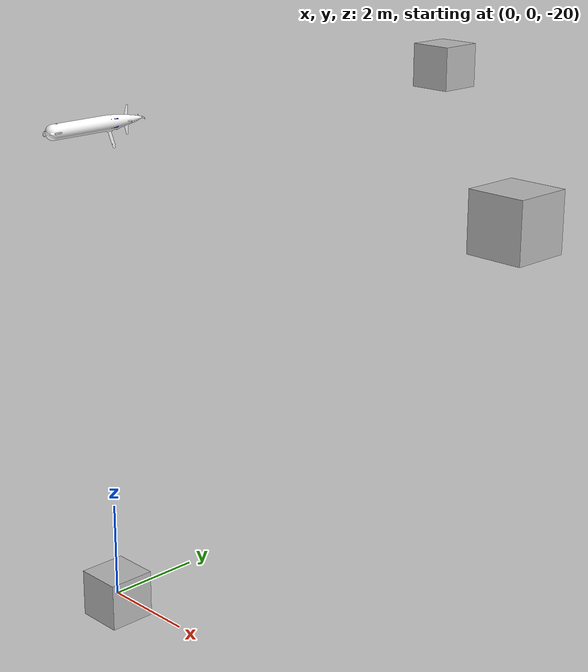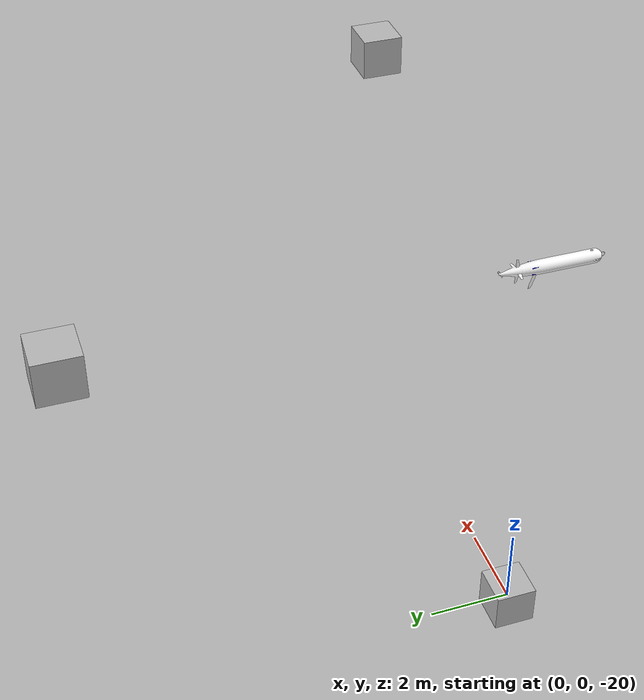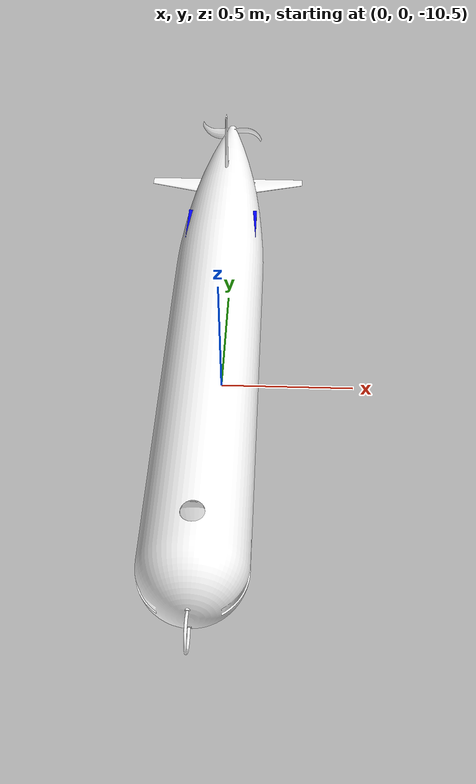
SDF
<?xml version="1.0" ?>
<!--
  Development of this module has been funded by the Monterey Bay Aquarium
  Research Institute (MBARI) and the David and Lucile Packard Foundation
-->

<!--
  This file is essentially identical to buoyant_tethys, except the vehicle
  starts at a depth of -10m instead of 0m. This is for tests that require the
  vehicle to be fully submerged.
-->
<sdf version="1.6">
  <world name="buoyant_tethys">
    <scene>
      <!-- For turquoise ambient to match particle effect -->
      <ambient>0.0 1.0 1.0</ambient>
      <!-- For default gray ambient -->
      <background>0.0 0.7 0.8</background>

      <grid>false</grid>
    </scene>

    <physics name="1ms" type="dart">
      <max_step_size>0.02</max_step_size>
      <real_time_factor>0</real_time_factor>
    </physics>
    <plugin
      filename="ignition-gazebo-physics-system"
      name="ignition::gazebo::systems::Physics">
    </plugin>
    <plugin
      filename="ignition-gazebo-user-commands-system"
      name="ignition::gazebo::systems::UserCommands">
    </plugin>
    <plugin
      filename="ignition-gazebo-scene-broadcaster-system"
      name="ignition::gazebo::systems::SceneBroadcaster">
    </plugin>

    <plugin
      filename="ignition-gazebo-buoyancy-system"
      name="ignition::gazebo::systems::Buoyancy">
      <!-- TODO: fix behaviour near surface, see https://github.com/osrf/lrauv/issues/102-->
        <graded_buoyancy>
        <default_density>1025</default_density>
        <density_change>
          <above_depth>0.5</above_depth>
          <density>1.125</density>
        </density_change>
      </graded_buoyancy>
    </plugin>

    <!-- Requires ParticleEmitter2 in ign-gazebo 4.8.0, which will be copied
      to ParticleEmitter in Ignition G.
      See https://github.com/ignitionrobotics/ign-gazebo/pull/730 -->

    <!-- Uncomment for time analysis -->

    <!-- Spawn by default in a location with science data in csv -->
    <spherical_coordinates>
      <surface_model>EARTH_WGS84</surface_model>
      <world_frame_orientation>ENU</world_frame_orientation>

      <!-- For 2003080103_mb_l3_las.csv -->
      <latitude_deg>35.5999984741211</latitude_deg>
      <longitude_deg>-121.779998779297</longitude_deg>

      <!-- For 2003080103_mb_l3_las_1x1km.csv -->

      <!-- For simple_test.csv -->

      <elevation>0</elevation>
      <heading_deg>0</heading_deg>
    </spherical_coordinates>
    <plugin
      filename="ScienceSensorsSystem"
      name="tethys::ScienceSensorsSystem">
      <data_path>2003080103_mb_l3_las.csv</data_path>
    </plugin>

    <gui fullscreen="0">

      <!-- 3D scene -->
      <plugin filename="MinimalScene" name="3D View">
        <ignition-gui>
          <title>3D View</title>
          <property type="bool" key="showTitleBar">false</property>
          <property type="string" key="state">docked</property>
        </ignition-gui>

        <engine>ogre2</engine>
        <scene>scene</scene>
        <ambient_light>0.4 0.4 0.4</ambient_light>
        <background_color>0.8 0.8 0.8</background_color>
        <!-- looking at robot -->
        <camera_pose>4.5 0 4  0 0.45 3.14</camera_pose>
        <!-- looking at all science data for 2003080103_mb_l3_las.csv -->
        <camera_clip>
          <!-- ortho view needs low near clip -->
          <!-- but a very low near clip messes orbit's far clip ?! -->
          <near>0.1</near>
          <!-- See 3000 km away -->
          <far>3000000</far>
        </camera_clip>
      </plugin>

      <!-- Plugins that add functionality to the scene -->
      <plugin filename="EntityContextMenuPlugin" name="Entity context menu">
        <ignition-gui>
          <property key="state" type="string">floating</property>
          <property key="width" type="double">5</property>
          <property key="height" type="double">5</property>
          <property key="showTitleBar" type="bool">false</property>
        </ignition-gui>
      </plugin>
      <plugin filename="GzSceneManager" name="Scene Manager">
        <ignition-gui>
          <anchors target="3D View">
            <line own="right" target="right"/>
            <line own="top" target="top"/>
          </anchors>
          <property key="resizable" type="bool">false</property>
          <property key="width" type="double">5</property>
          <property key="height" type="double">5</property>
          <property key="state" type="string">floating</property>
          <property key="showTitleBar" type="bool">false</property>
        </ignition-gui>
      </plugin>
      <plugin filename="InteractiveViewControl" name="Interactive view control">
        <ignition-gui>
          <anchors target="3D View">
            <line own="right" target="right"/>
            <line own="top" target="top"/>
          </anchors>
          <property key="resizable" type="bool">false</property>
          <property key="width" type="double">5</property>
          <property key="height" type="double">5</property>
          <property key="state" type="string">floating</property>
          <property key="showTitleBar" type="bool">false</property>
        </ignition-gui>
      </plugin>
      <plugin filename="CameraTracking" name="Camera Tracking">
        <ignition-gui>
          <anchors target="3D View">
            <line own="right" target="right"/>
            <line own="top" target="top"/>
          </anchors>
          <property key="resizable" type="bool">false</property>
          <property key="width" type="double">5</property>
          <property key="height" type="double">5</property>
          <property key="state" type="string">floating</property>
          <property key="showTitleBar" type="bool">false</property>
        </ignition-gui>
      </plugin>
      <plugin filename="MarkerManager" name="Marker manager">
        <ignition-gui>
          <anchors target="3D View">
            <line own="right" target="right"/>
            <line own="top" target="top"/>
          </anchors>
          <property key="resizable" type="bool">false</property>
          <property key="width" type="double">5</property>
          <property key="height" type="double">5</property>
          <property key="state" type="string">floating</property>
          <property key="showTitleBar" type="bool">false</property>
        </ignition-gui>
        <warn_on_action_failure>false</warn_on_action_failure>
      </plugin>
      <plugin filename="SelectEntities" name="Select Entities">
        <ignition-gui>
          <anchors target="Select entities">
            <line own="right" target="right"/>
            <line own="top" target="top"/>
          </anchors>
          <property key="resizable" type="bool">false</property>
          <property key="width" type="double">5</property>
          <property key="height" type="double">5</property>
          <property key="state" type="string">floating</property>
          <property key="showTitleBar" type="bool">false</property>
        </ignition-gui>
      </plugin>
      <plugin filename="VisualizationCapabilities" name="Visualization Capabilities">
        <ignition-gui>
          <anchors target="Select entities">
            <line own="right" target="right"/>
            <line own="top" target="top"/>
          </anchors>
          <property key="resizable" type="bool">false</property>
          <property key="width" type="double">5</property>
          <property key="height" type="double">5</property>
          <property key="state" type="string">floating</property>
          <property key="showTitleBar" type="bool">false</property>
        </ignition-gui>
      </plugin>

      <!-- World control -->
      <plugin filename="WorldControl" name="World control">
        <ignition-gui>
          <title>World control</title>
          <property type="bool" key="showTitleBar">false</property>
          <property type="bool" key="resizable">false</property>
          <property type="double" key="height">72</property>
          <property type="double" key="width">121</property>
          <property type="double" key="z">1</property>

          <property type="string" key="state">floating</property>
          <anchors target="3D View">
            <line own="left" target="left"/>
            <line own="bottom" target="bottom"/>
          </anchors>
        </ignition-gui>

        <play_pause>true</play_pause>
        <step>true</step>
        <start_paused>true</start_paused>
      </plugin>

      <!-- World statistics -->
      <plugin filename="WorldStats" name="World stats">
        <ignition-gui>
          <title>World stats</title>
          <property type="bool" key="showTitleBar">false</property>
          <property type="bool" key="resizable">false</property>
          <property type="double" key="height">110</property>
          <property type="double" key="width">290</property>
          <property type="double" key="z">1</property>

          <property type="string" key="state">floating</property>
          <anchors target="3D View">
            <line own="right" target="right"/>
            <line own="bottom" target="bottom"/>
          </anchors>
        </ignition-gui>

        <sim_time>true</sim_time>
        <real_time>true</real_time>
        <real_time_factor>true</real_time_factor>
        <iterations>true</iterations>
      </plugin>

      <plugin filename="Plot3D" name="Plot 3D">
        <ignition-gui>
          <title>Plot Tethys 3D path</title>
          <property type="string" key="state">docked_collapsed</property>
        </ignition-gui>
        <entity_name>tethys</entity_name>
        <color>0 0 1</color>
        <maximum_points>10000</maximum_points>
        <minimum_distance>0.5</minimum_distance>
      </plugin>
      <plugin filename="ComponentInspector" name="Component Inspector">
        <ignition-gui>
          <title>Inspector</title>
          <property type="string" key="state">docked_collapsed</property>
        </ignition-gui>
      </plugin>
      <plugin filename="PointCloud" name="Visualize science data">
        <ignition-gui>
          <title>Visualize science data</title>
          <property type="string" key="state">docked_collapsed</property>
        </ignition-gui>
      </plugin>
      <plugin filename="ViewAngle" name="Camera controls">
        <ignition-gui>
          <title>Camera controls</title>
          <property type="string" key="state">docked_collapsed</property>
        </ignition-gui>
      </plugin>
      <plugin filename="GridConfig" name="Grid config">
        <ignition-gui>
          <property type="string" key="state">docked_collapsed</property>
        </ignition-gui>
        <insert>
          <!-- 300 km x 300 km -->
          <cell_count>6</cell_count>
          <vertical_cell_count>0</vertical_cell_count>
          <!-- 50 km -->
          <cell_length>50000</cell_length>
          <pose>0 100000 0  0 0 0.32</pose>
          <color>0 1 0 1</color>
        </insert>
        <insert>
          <!-- 0.1 km x 0.1 km -->
          <cell_count>100</cell_count>
          <vertical_cell_count>0</vertical_cell_count>
          <cell_length>1</cell_length>
          <pose>0 0 0  0 0 0</pose>
          <color>0.5 0.5 0.5 1</color>
        </insert>
      </plugin>
      <plugin filename="ControlPanelPlugin" name="Tethys Controls">
        <ignition-gui>
          <title>Tethys controls</title>
          <property type="string" key="state">docked_collapsed</property>
        </ignition-gui>
      </plugin>
      <plugin filename="ReferenceAxis" name="Reference axis">
        <ignition-gui>
          <title>Reference axis</title>
          <property type="string" key="state">docked_collapsed</property>
        </ignition-gui>
        <fsk>tethys</fsk>
      </plugin>
    </gui>

    <light type="directional" name="sun">
      <cast_shadows>true</cast_shadows>
      <pose>0 0 10 0 0 0</pose>
      <diffuse>1 1 1 1</diffuse>
      <specular>0.5 0.5 0.5 1</specular>
      <attenuation>
        <range>1000</range>
        <constant>0.9</constant>
        <linear>0.01</linear>
        <quadratic>0.001</quadratic>
      </attenuation>
      <direction>-0.5 0.1 -0.9</direction>
    </light>

    <!-- This invisible plane helps with orbiting the camera, especially at large scales -->
    <model name="horizontal_plane">
      <static>true</static>
      <link name="link">
        <visual name="visual">
          <geometry>
            <plane>
              <normal>0 0 1</normal>
              <!-- 300 km x 300 km -->
              <size>300000 300000</size>
            </plane>
          </geometry>
          <transparency>1.0</transparency>
        </visual>
      </link>
    </model>

    <include>
      <pose>0 0 -10 0 0 0</pose>
      <uri>tethys_equipped</uri>
    </include>

    <model name="commsLink1">
      <static>true</static>
      <pose>0 10 -10 0 0 0</pose>
      <link name="base_link">
        <inertial>
          <mass>1000</mass>
          <inertia>
            <ixx>86.289</ixx>
            <iyy>86.289</iyy>
            <izz>86.289</izz>
          </inertia>
        </inertial>
        <visual name="base_link_vis">
          <geometry>
            <box>
              <size>1 1 1</size>
            </box>
          </geometry>
        </visual>
        <collision name="base_link_coll">
          <geometry>
            <box>
              <size>1 1 1</size>
            </box>
          </geometry>
        </collision>
      </link>
      <plugin
        filename="AcousticCommsPlugin"
        name="tethys::AcousticCommsPlugin">
        <address>2</address>
        <model_plugin_file>simpleacousticmodel</model_plugin_file>
        <model_name>tethys::SimpleAcousticModel</model_name>
        <link_name>base_link</link_name>
        <max_range>2500</max_range>
        <speed_of_sound>1500</speed_of_sound>
        <timestep>0.000001</timestep>
      </plugin>
      <plugin
        filename="RangeBearingPlugin"
        name="tethys::RangeBearingPlugin">
        <address>2</address>
        <processing_delay>0.3</processing_delay>
        <speed_of_sound>1500</speed_of_sound>
        <link_name>base_link</link_name>
        <namespace>box1</namespace>
      </plugin>
    </model>

    <model name="commsLink2">
      <static>true</static>
      <pose>10 0 -10 0 0 0</pose>
      <link name="base_link">
        <inertial>
          <mass>1000</mass>
          <inertia>
            <ixx>86.289</ixx>
            <iyy>86.289</iyy>
            <izz>86.289</izz>
          </inertia>
        </inertial>
        <visual name="base_link_vis">
          <geometry>
            <box>
              <size>1 1 1</size>
            </box>
          </geometry>
        </visual>
        <collision name="base_link_coll">
          <geometry>
            <box>
              <size>1 1 1</size>
            </box>
          </geometry>
        </collision>
      </link>
      <plugin
        filename="AcousticCommsPlugin"
        name="tethys::AcousticCommsPlugin">
        <address>3</address>
        <model_plugin_file>simpleacousticmodel</model_plugin_file>
        <model_name>tethys::SimpleAcousticModel</model_name>
        <link_name>base_link</link_name>
        <max_range>2500</max_range>
        <speed_of_sound>1500</speed_of_sound>
        <timestep>0.000001</timestep>
      </plugin>
      <plugin
        filename="RangeBearingPlugin"
        name="tethys::RangeBearingPlugin">
        <address>3</address>
        <processing_delay>0.3</processing_delay>
        <speed_of_sound>1500</speed_of_sound>
        <link_name>base_link</link_name>
        <namespace>box2</namespace>
      </plugin>
    </model>

    <model name="commsLink3">
      <static>true</static>
      <pose>0 0 -20 0 0 0</pose>
      <link name="base_link">
        <inertial>
          <mass>1000</mass>
          <inertia>
            <ixx>86.289</ixx>
            <iyy>86.289</iyy>
            <izz>86.289</izz>
          </inertia>
        </inertial>
        <visual name="base_link_vis">
          <geometry>
            <box>
              <size>1 1 1</size>
            </box>
          </geometry>
        </visual>
        <collision name="base_link_coll">
          <geometry>
            <box>
              <size>1 1 1</size>
            </box>
          </geometry>
        </collision>
      </link>
      <plugin
        filename="AcousticCommsPlugin"
        name="tethys::AcousticCommsPlugin">
        <address>4</address>
        <model_plugin_file>simpleacousticmodel</model_plugin_file>
        <model_name>tethys::SimpleAcousticModel</model_name>
        <link_name>base_link</link_name>
        <max_range>2500</max_range>
        <speed_of_sound>1500</speed_of_sound>
        <timestep>0.000001</timestep>
      </plugin>
      <plugin
        filename="RangeBearingPlugin"
        name="tethys::RangeBearingPlugin">
        <address>4</address>
        <processing_delay>0.3</processing_delay>
        <speed_of_sound>1500</speed_of_sound>
        <link_name>base_link</link_name>
        <namespace>box3</namespace>
      </plugin>
    </model>

  </world>
</sdf>

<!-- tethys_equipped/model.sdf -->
<!--
  Development of this module has been funded by the Monterey Bay Aquarium
  Research Institute (MBARI) and the David and Lucile Packard Foundation
-->
<sdf version="1.9">
  <model name="tethys">
    <enable_wind>true</enable_wind>

    <include merge="true">
      <!-- align with NED (face North) -->
      <pose degrees="true">0 0 0 0 0 -90</pose>
      <uri>tethys</uri>

      <!-- Sensors -->
      <experimental:params>
        <sensor
          element_id="base_link" action="add"
          name="salinity_sensor"
          type="custom"
          gz:type="environmental_sensor/salinity">
          <always_on>1</always_on>
          <update_rate>30</update_rate>
          <environment_variable>sea_water_salinity_psu</environment_variable>
          <topic>/model/tethys/salinity</topic>
        </sensor>
        <sensor
          element_id="base_link" action="add"
          name="temperature_sensor"
          type="custom"
          gz:type="environmental_sensor/temperature">
          <always_on>1</always_on>
          <update_rate>30</update_rate>
          <environment_variable>sea_water_temperature_degC</environment_variable>
          <topic>/model/tethys/temperature</topic>
        </sensor>
        <sensor
          element_id="base_link" action="add"
          name="chlorophyll_sensor"
          type="custom"
          gz:type="environmental_sensor/chlorophyll">
          <always_on>1</always_on>
          <update_rate>30</update_rate>
          <environment_variable>mass_concentration_of_chlorophyll_in_sea_water_ugram_per_liter</environment_variable>
          <topic>/model/tethys/chlorophyll</topic>
        </sensor>

        <sensor
          element_id="base_link" action="add"
          name="current_sensor"
          type="custom"
          gz:type="environmental_sensor/current">
          <always_on>1</always_on>
          <update_rate>2</update_rate>
          <transform_type>ADD_VELOCITY_LOCAL</transform_type>
          <output_format>vector3</output_format>
          <environment_variable_x>eastward_sea_water_velocity_meter_per_sec</environment_variable_x>
          <environment_variable_y>northward_sea_water_velocity_meter_per_sec</environment_variable_y>
          <topic>/model/tethys/current</topic>
        </sensor>

        <!--
            Teledyne Pathfinder DVL

            See https://www.manualslib.com/manual/1447288/Teledyne-Pathfinder.html
            for further reference.
        -->
        <sensor
            element_id="base_link" action="add"
            name="teledyne_pathfinder_dvl"
            type="custom" gz:type="dvl">
          <!-- Account for DVL mounting position and base link rotation -->
          <pose degrees="true">-0.60 0 -0.16 0 0 180</pose>
          <always_on>1</always_on>
          <update_rate>1</update_rate>
          <topic>/tethys/dvl/velocity</topic>
          <gz:dvl>
            <type>phased_array</type>
            <arrangement degrees="true">
              <beam id="1">
                <aperture>2.1</aperture>
                <rotation>45</rotation>
                <tilt>30</tilt>
              </beam>
              <beam>
                <aperture>2.1</aperture>
                <rotation>135</rotation>
                <tilt>30</tilt>
              </beam>
              <beam>
                <aperture>2.1</aperture>
                <rotation>-45</rotation>
                <tilt>30</tilt>
              </beam>
              <beam>
                <aperture>2.1</aperture>
                <rotation>-135</rotation>
                <tilt>30</tilt>
              </beam>
            </arrangement>
            <tracking>
              <bottom_mode>
                <when>best</when>
                <noise type="gaussian">
                  <!-- +/- 0.4 cm/s precision at 10 m/s within 2 stddevs -->
                  <stddev>0.002</stddev>
                </noise>
                <visualize>false</visualize>
              </bottom_mode>
              <water_mass_mode>
                <when>best</when>
                <water_velocity>
                  <x>eastward_sea_water_velocity_meter_per_sec</x>
                  <y>northward_sea_water_velocity_meter_per_sec</y>
                </water_velocity>
                <boundaries>
                  <near>20.</near>
                  <far>60.</far>
                </boundaries>
                <bins>10</bins>
                <noise type="gaussian">
                  <!-- +/- 0.7 cm/s precision at 10 m/s within 2 stddevs -->
                  <stddev>0.0035</stddev>
                </noise>
                <visualize>false</visualize>
              </water_mass_mode>
            </tracking>
            <!-- Roughly 1 m resolution at a 100m -->
            <resolution>0.01</resolution>
            <!-- Approximate maximum range @ ~14.4v -->
            <maximum_range>80.</maximum_range>
            <minimum_range>0.1</minimum_range>
            <!-- ENU to SFM -->
            <reference_frame>0 0 0 0 0 -1.570796</reference_frame>
          </gz:dvl>
        </sensor>
        <!--
            Sparton AHRS-M2 arrangement of IMU + Magnetometer

            See https://www.spartonnavex.com/product/ahrs-m2 for
            AHRS specifications and additional documentation.
        -->
        <sensor
            element_id="base_link"
            action="add"
            name="sparton_ahrs_m2_imu"
            type="imu">
          <!--IMU in a Sparton AHRS-M2 -->
          <always_on>1</always_on>
          <!-- Flip body frame to match FSK frame convention -->
          <!--
            Also account for model being rotated 180 degrees
            See https://github.com/osrf/lrauv/issues/80.
          -->
          <pose degrees="true">0 0 0 180 0 180</pose>
          <imu>
            <orientation_reference_frame>
              <localization>NED</localization>
            </orientation_reference_frame>
            <enable_orientation>1</enable_orientation>
            <linear_acceleration>
              <x>
                <noise type="gaussian">
                  <stddev>0.00775283755402256</stddev>
                  <bias_stddev>0.007297128265</bias_stddev>
                </noise>
              </x>
              <y>
                <noise type="gaussian">
                  <stddev>0.00775283755402256</stddev>
                  <bias_stddev>0.007297128265</bias_stddev>
                </noise>
              </y>
              <z>
                <noise type="gaussian">
                  <stddev>0.00775283755402256</stddev>
                  <bias_stddev>0.007297128265</bias_stddev>
                </noise>
              </z>
            </linear_acceleration>
            <angular_velocity>
              <x>
                <noise type="gaussian">
                  <stddev>0.0022076862812880228</stddev>
                  <bias_stddev>0.0017819444444444445</bias_stddev>
                </noise>
              </x>
              <y>
                <noise type="gaussian">
                  <stddev>0.0022076862812880228</stddev>
                  <bias_stddev>0.0017819444444444445</bias_stddev>
                </noise>
              </y>
              <z>
                <noise type="gaussian">
                  <stddev>0.0022076862812880228</stddev>
                  <bias_stddev>0.0017819444444444445</bias_stddev>
                </noise>
              </z>
            </angular_velocity>
          </imu>
          <update_rate>10</update_rate>
          <topic>/tethys/ahrs/imu</topic>
        </sensor>
        <!--Magnetometer in a Sparton AHRS-M2 -->
        <sensor
            element_id="base_link"
            action="add"
            name="sparton_ahrs_m2_magnetometer"
            type="magnetometer">
          <always_on>1</always_on>
          <update_rate>10</update_rate>
          <!-- Flip body frame to match FSK frame convention -->
          <!--
            Also account for model being rotated 180 degrees
            See https://github.com/osrf/lrauv/issues/80.
          -->
          <pose degrees="true">0 0 0 180 0 180</pose>
          <topic>/tethys/ahrs/magnetometer</topic>
        </sensor>
      </experimental:params>
      <!-- Joint controllers -->
      <plugin
        filename="gz-sim-joint-position-controller-system"
        name="gz::sim::systems::JointPositionController">
        <joint_name>horizontal_fins_joint</joint_name>
        <p_gain>0.1</p_gain>
      </plugin>
      <plugin
        filename="gz-sim-joint-position-controller-system"
        name="gz::sim::systems::JointPositionController">
        <joint_name>vertical_fins_joint</joint_name>
        <p_gain>0.1</p_gain>
      </plugin>
      <plugin
        filename="gz-sim-thruster-system"
        name="gz::sim::systems::Thruster">
        <namespace>tethys</namespace>
        <joint_name>propeller_joint</joint_name>
        <!-- Be sure to update TethysComm when updating these numbers -->
        <thrust_coefficient>0.004312328425753156</thrust_coefficient>
        <fluid_density>1025</fluid_density>
        <propeller_diameter>0.2</propeller_diameter>
        <velocity_control>true</velocity_control>
        <use_angvel_cmd>true</use_angvel_cmd>
      </plugin>
      <plugin
        filename="gz-sim-joint-position-controller-system"
        name="gz::sim::systems::JointPositionController">
        <joint_name>battery_joint</joint_name>
        <use_velocity_commands>true</use_velocity_commands>
        <cmd_max>0.0007</cmd_max>
      </plugin>
      <!-- Lift and drag -->
      <!-- Vertical fin -->
      <plugin
        filename="gz-sim-lift-drag-system"
        name="gz::sim::systems::LiftDrag">
        <air_density>1025</air_density>
        <cla>4.13</cla>
        <cla_stall>-1.1</cla_stall>
        <cda>0.2</cda>
        <cda_stall>0.03</cda_stall>
        <alpha_stall>0.17</alpha_stall>
        <a0>0</a0>
        <area>0.0244</area>
        <!-- Link's Y is perpendicular to the control surface -->
        <upward>0 1 0</upward>
        <!-- Link's X is pointing towards the back -->
        <forward>-1 0 0</forward>
        <link_name>vertical_fins</link_name>
        <cp>0 0 0</cp>
      </plugin>
      <!-- Horizontal fin -->
      <plugin
        filename="gz-sim-lift-drag-system"
        name="gz::sim::systems::LiftDrag">
        <air_density>1025</air_density>
        <cla>4.13</cla>
        <cla_stall>-1.1</cla_stall>
        <cda>0.2</cda>
        <cda_stall>0.03</cda_stall>
        <alpha_stall>0.17</alpha_stall>
        <a0>0</a0>
        <area>0.0244</area>
        <!-- Link's Z is perpendicular to the control surface -->
        <upward>0 0 1</upward>
        <!-- Link's X is pointing towards the back -->
        <forward>-1 0 0</forward>
        <link_name>horizontal_fins</link_name>
        <cp>0 0 0</cp>
      </plugin>
      <!-- Interface with LRAUV Main Vehicle Application for each vehicle -->
      <plugin
        filename="TethysCommPlugin"
        name="tethys::TethysCommPlugin">
        <namespace>tethys</namespace>
        <command_topic>tethys/command_topic</command_topic>
        <state_topic>tethys/state_topic</state_topic>
        <debug_printout>0</debug_printout>
        <ocean_density>1025</ocean_density>
      </plugin>
      <plugin
        filename="HydrodynamicsPlugin"
        name="tethys::HydrodynamicsPlugin">
        <link_name>base_link</link_name>
        <enable_coriolis>false</enable_coriolis>
        <xDotU>-4.876161</xDotU>
        <yDotV>-126.324739</yDotV>
        <zDotW>-126.324739</zDotW>
        <kDotP>0</kDotP>
        <mDotQ>-33.46</mDotQ>
        <nDotR>-33.46</nDotR>
        <xUU>-6.2282</xUU>
        <xU>0</xU>
        <yVV>-601.27</yVV>
        <yV>0</yV>
        <zWW>-601.27</zWW>
        <zW>0</zW>
        <kPP>-0.1916</kPP>
        <kP>0</kP>
        <mQQ>-632.698957</mQQ>
        <mQ>0</mQ>
        <nRR>-632.698957</nRR>
        <nR>0</nR>
      </plugin>
      <plugin
        filename="gz-sim-buoyancy-engine-system"
        name="gz::sim::systems::BuoyancyEngine">
        <link_name>buoyancy_engine</link_name>
        <namespace>tethys</namespace>
        <fluid_density>1025</fluid_density>
        <!-- 80 cc == 0.00008 m^3 -->
        <min_volume>0.000080</min_volume>
        <!-- 500 cc == 0.0005 m^3 -->
        <neutral_volume>0.0005</neutral_volume>
        <default_volume>0.0005</default_volume>
        <!-- 955 cc == 0.000955 m^3 -->
        <max_volume>0.000955</max_volume>
        <max_inflation_rate>0.000003</max_inflation_rate>
      </plugin>
      <plugin
        filename="gz-sim-detachable-joint-system"
        name="gz::sim::systems::DetachableJoint">
        <parent_link>base_link</parent_link>
        <child_model>__model__</child_model>
        <child_link>drop_weight</child_link>
        <topic>/model/tethys/drop_weight</topic>
      </plugin>

      <plugin
        filename="gz-sim-comms-endpoint-system"
        name="gz::sim::systems::CommsEndpoint">
        <address>1</address>
        <topic>1/rx</topic>
      </plugin>

      <plugin
        filename="RangeBearingPlugin"
        name="tethys::RangeBearingPlugin">
        <address>1</address>
        <processing_delay>0.3</processing_delay>
        <speed_of_sound>1500</speed_of_sound>
        <link_name>acoustic_transponder</link_name>
        <namespace>tethys</namespace>
      </plugin>

      <!-- The consists of 62 batteries of NH2034HD34 Lithium Ion batteries. -->
      <!-- Datasheet: https://github.com/osrf/lrauv/files/8614587/NH2034HD34_spec_v1.5.pdf -->
      <!-- Reference comment : https://github.com/osrf/lrauv/issues/201#issuecomment-1116729239 -->
      <plugin filename="gz-sim-linearbatteryplugin-system"
        name="gz::sim::systems::LinearBatteryPlugin">
        <battery_name>linear_battery</battery_name>
        <voltage>14.4</voltage>
        <open_circuit_voltage_constant_coef>14.4</open_circuit_voltage_constant_coef>
        <fix_issue_225>true</fix_issue_225>
        <!-- Initial charge in Ah -->
        <initial_charge>400</initial_charge>
        <capacity>400</capacity>
        <!-- 190mOhm / 62 -->
        <resistance>0.003064</resistance>
        <!-- Power consumption in Watts: 14.4V * 2 A -->
        <power_load>28.8</power_load>
        <!-- Recharging the battery -->
        <!-- Avg discharge current = (max + min) / 2 -->
        <!-- Charging time: 400 Ah/( 9.5 A ) = 42.1 h -->
        <enable_recharge>true</enable_recharge>
        <recharge_by_topic>true</recharge_by_topic>
        <charging_time>42.1</charging_time>
      </plugin>

    </include>
  </model>
</sdf>

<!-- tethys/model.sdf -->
<!--
  Development of this module has been funded by the Monterey Bay Aquarium
  Research Institute (MBARI) and the David and Lucile Packard Foundation
-->
<sdf version="1.6">
  <model name="tethys">
    <!-- Body -->
    <link name="base_link">
      <inertial>
        <!-- to offset battery CoM before getting real parameters for vehicle without battery -->
        <!-- 146.5671 subtracted by battery mass -->
        <mass>114.8364</mass>
        <!-- TODO: Get inertial matrix of base link WITHOUT battery -->
        <inertia>

          <!-- Guesstimated (decreased by 1/5) to account for battery -->
          <ixx>2.4</ixx>
          <ixy>0</ixy>
          <ixz>0.0004</ixz>
          <iyy>33.5841864</iyy>
          <iyz>0</iyz>
          <izz>33.5841864</izz>

        </inertia>
      </inertial>

      <collision name="main_body_buoyancy">
        <pose>0 0 0.007 0 0 0</pose>
        <geometry>
          <box>
            <size>2 0.3 0.245945166667</size>
          </box>
        </geometry>
      </collision>

      <visual name="visual">
        <geometry>
          <mesh>
            <uri>meshes/tethys.dae</uri>
            <submesh>
              <name>Body</name>
              <center>false</center>
            </submesh>
          </mesh>
        </geometry>
        <material>
          <diffuse>1.0 1.0 1.0 1.0</diffuse>
          <specular>1.0 1.0 1.0 1.0</specular>
          <pbr>
            <metal>
              <albedo_map>materials/textures/Tethys_Albedo.png</albedo_map>
              <normal_map>materials/textures/Tethys_Normal.png</normal_map>
              <metalness_map>materials/textures/Tethys_Metalness.png</metalness_map>
              <roughness_map>materials/textures/Tethys_Roughness.png</roughness_map>
            </metal>
          </pbr>
          <script>
            <uri>materials/scripts/</uri>
            <uri>materials/textures/</uri>
            <name>tethys/Tethys_Diffuse</name>
          </script>
        </material>
      </visual>
    </link>

    <!-- Horizontal fins -->
    <link name="horizontal_fins">
      <pose>1.05 0 0 0 0 0</pose>
      <inertial>
        <pose>0 0 0 1.57 0 0.5</pose>
        <mass>0.2</mass>
        <inertia>
          <ixx>0.0007924568755</ixx>
          <ixy>-0.0000000002674</ixy>
          <ixz>0.0003978158176</ixz>
          <iyy>0.0010546736475</iyy>
          <iyz>-0.0000000006729</iyz>
          <izz>0.0002633558262</izz>
        </inertia>
      </inertial>

      <collision name="collision">
        <geometry>
          <box>
            <size>0.1 0.1 0.02</size>
          </box>
        </geometry>
      </collision>

      <visual name= "visual">
        <pose>-1.05 0 0 0 0 0</pose>
        <geometry>
          <mesh>
            <uri>meshes/tethys.dae</uri>
            <submesh>
              <name>Fins_Horizontal</name>
              <center>false</center>
            </submesh>
          </mesh>
        </geometry>
        <material>
          <diffuse>1.0 1.0 1.0</diffuse>
          <specular>1.0 1.0 1.0</specular>
          <pbr>
            <metal>
              <albedo_map>materials/textures/Tethys_Albedo.png</albedo_map>
              <normal_map>materials/textures/Tethys_Normal.png</normal_map>
              <metalness_map>materials/textures/Tethys_Metalness.png</metalness_map>
              <roughness_map>materials/textures/Tethys_Roughness.png</roughness_map>
            </metal>
          </pbr>
          <script>
            <uri>materials/scripts/</uri>
            <uri>materials/textures/</uri>
            <name>tethys/Tethys_Diffuse</name>
          </script>
        </material>
      </visual>
    </link>

    <!-- Vertical fins -->
    <link name="vertical_fins">
      <pose>1.05 0 0 0 0 0</pose>
      <inertial>
        <mass>0.2</mass>
        <inertia>
          <ixx>0.0007924568755</ixx>
          <ixy>-0.0000000002674</ixy>
          <ixz>0.0003978158176</ixz>
          <iyy>0.0010546736475</iyy>
          <iyz>-0.0000000006729</iyz>
          <izz>0.0002633558262</izz>
        </inertia>
      </inertial>

      <collision name="collision">
         <geometry>
          <box>
            <size>0.1 0.1 0.02</size>
          </box>
        </geometry>
      </collision>

      <visual name= "visual">
        <pose>-1.05 0 0 0 0 0</pose>
        <geometry>
          <mesh>
            <uri>meshes/tethys.dae</uri>
            <submesh>
              <name>Fins_vertical</name>
              <center>false</center>
            </submesh>
          </mesh>
        </geometry>
        <material>
          <diffuse>1.0 1.0 1.0</diffuse>
          <specular>1.0 1.0 1.0</specular>
          <pbr>
            <metal>
              <albedo_map>materials/textures/Tethys_Albedo.png</albedo_map>
              <normal_map>materials/textures/Tethys_Normal.png</normal_map>
              <metalness_map>materials/textures/Tethys_Metalness.png</metalness_map>
              <roughness_map>materials/textures/Tethys_Roughness.png</roughness_map>
            </metal>
          </pbr>
          <script>
            <uri>materials/scripts/</uri>
            <uri>materials/textures/</uri>
            <name>tethys/Tethys_Diffuse</name>
          </script>
        </material>
      </visual>
    </link>

    <!-- Propeller -->
    <link name="propeller">
      <pose>1.43162 0 0 0 0 0</pose>
      <inertial>
        <pose>0 0 0 1.570796 0 0</pose>
        <mass>0.09</mass>
        <inertia>
          <ixx>0.000143971303</ixx>
          <ixy>0.000000000008</ixy>
          <ixz>-0.000000000224</ixz>
          <iyy>0.000140915448</iyy>
          <iyz>-0.000025236433</iyz>
          <izz>0.000033571862</izz>
        </inertia>
      </inertial>

      <collision name="collision">
        <geometry>
          <box>
            <size>0.03 0.1 0.03</size>
          </box>
        </geometry>
      </collision>

      <visual name= "visual">
        <pose>-1.43162 0 0 0 0 0</pose>
        <geometry>
          <mesh>
            <uri>meshes/tethys.dae</uri>
            <submesh>
              <name>Prop</name>
              <center>false</center>
            </submesh>
          </mesh>
        </geometry>
        <material>
          <diffuse>1.0 1.0 1.0</diffuse>
          <specular>1.0 1.0 1.0</specular>
          <pbr>
            <metal>
              <albedo_map>materials/textures/Tethys_Albedo.png</albedo_map>
              <normal_map>materials/textures/Tethys_Normal.png</normal_map>
              <metalness_map>materials/textures/Tethys_Metalness.png</metalness_map>
              <roughness_map>materials/textures/Tethys_Roughness.png</roughness_map>
            </metal>
          </pbr>
          <script>
            <uri>materials/scripts/</uri>
            <uri>materials/textures/</uri>
            <name>tethys/Tethys_Diffuse</name>
          </script>
        </material>
      </visual>
    </link>

    <!-- Battery -->
    <!-- No separate collision for battery, because it is inside the vehicle.
         Additional collision requires buoyancy volume recalculation. -->
    <link name="battery">
      <!-- TODO: On hold till mesh center adjusted to aft dome, then it will be 0.563, 0, 0.024. -->
      <pose>0 0 0 0 0 0</pose>
      <inertial>
        <!-- Non-zero y creates roll. Not fun to tune without actual base link inertia minus battery-->
        <mass>31.7307</mass>
        <inertia>
          <ixx>0.2327</ixx>
          <ixy>0</ixy>
          <ixz>-0.0004</ixz>
          <iyy>1.0930</iyy>
          <iyz>0</iyz>
          <izz>1.0344</izz>
        </inertia>
      </inertial>

      <visual name= "visual">
        <geometry>
          <box>
            <!-- z is guesstimated from schematics. Visual doesn't matter. -->
            <size>0.6489446 0.24638 0.17415</size>
          </box>
        </geometry>
        <material>
          <diffuse>0.0 0.0 1.0 1.0</diffuse>
          <specular>0.0 0.0 1.0 1.0</specular>
        </material>
      </visual>
    </link>

    <link name="buoyancy_engine">
      <!-- TODO: Determine location of buoyancy engine -->
      <pose>0.4 0 0 0 0 0</pose>

      <inertial>
        <pose>0 0 0 0 0 0</pose>
        <mass>0.3</mass>
        <inertia>
          <ixx>0.000143971303</ixx>
          <ixy>0.000000000008</ixy>
          <ixz>-0.000000000224</ixz>
          <iyy>0.000140915448</iyy>
          <iyz>-0.000025236433</iyz>
          <izz>0.000033571862</izz>
        </inertia>
      </inertial>
      <collision name="collision">
        <geometry>
          <box>
            <size>0.03 0.1 0.1</size>
          </box>
        </geometry>
      </collision>
    </link>

    <!-- Joints -->
    <joint name="buoyancy_engine_joint" type="fixed">
      <pose>0 0 0 0 0 0</pose>
      <parent>base_link</parent>
      <child>buoyancy_engine</child>
      <namespace>tethys</namespace>
    </joint>
    <joint name="horizontal_fins_joint" type="revolute">
      <pose>0 0 0 0 0 0</pose>
      <parent>base_link</parent>
      <child>horizontal_fins</child>
      <axis>
        <xyz>0 1 0</xyz>
        <limit>
          <lower>-0.261799</lower>
          <upper>0.261799</upper>
          <effort>-1</effort>
          <velocity>-1</velocity>
        </limit>
      </axis>
    </joint>

    <joint name="vertical_fins_joint" type="revolute">
      <pose degrees="true">0 0 0   180 0 0</pose>
      <parent>base_link</parent>
      <child>vertical_fins</child>
      <axis>
        <xyz>0 0 1</xyz>
        <limit>
          <lower>-0.261799</lower>
          <upper>0.261799</upper>
          <effort>-1</effort>
          <velocity>-1</velocity>
        </limit>
      </axis>
    </joint>

    <joint name="propeller_joint" type="revolute">
      <pose degrees="true">0 0 0   0 180 0</pose>
      <parent>base_link</parent>
      <child>propeller</child>
      <axis>
        <xyz>1 0 0</xyz>
        <limit>
          <lower>-1e+12</lower>
          <upper>1e+12</upper>
          <effort>1e6</effort>
          <velocity>-1</velocity>
        </limit>
      </axis>
    </joint>

    <!-- positive joint values move mass forward -->
    <joint name="battery_joint" type="prismatic">
      <pose degrees="true">0 0 0   0 0 180</pose>
      <parent>base_link</parent>
      <child>battery</child>
      <axis>
        <xyz>1 0 0</xyz>
        <limit>
          <lower>-0.03</lower>
          <upper>0.03</upper>
          <effort>1e6</effort>
          <velocity>0.0007</velocity>
        </limit>
      </axis>
    </joint>

    <!-- Drop weight -->
    <link name="drop_weight">
      <pose>0 0 0 0 0 0</pose>
      <inertial>
        <pose>0 0 0 0 0 0</pose>
        <mass>1</mass>
        <inertia>
          <ixx>0.000143971303</ixx>
          <ixy>0.000000000008</ixy>
          <ixz>-0.000000000224</ixz>
          <iyy>0.000140915448</iyy>
          <iyz>-0.000025236433</iyz>
          <izz>0.000033571862</izz>
        </inertia>
      </inertial>
    </link>

  </model>
</sdf>
